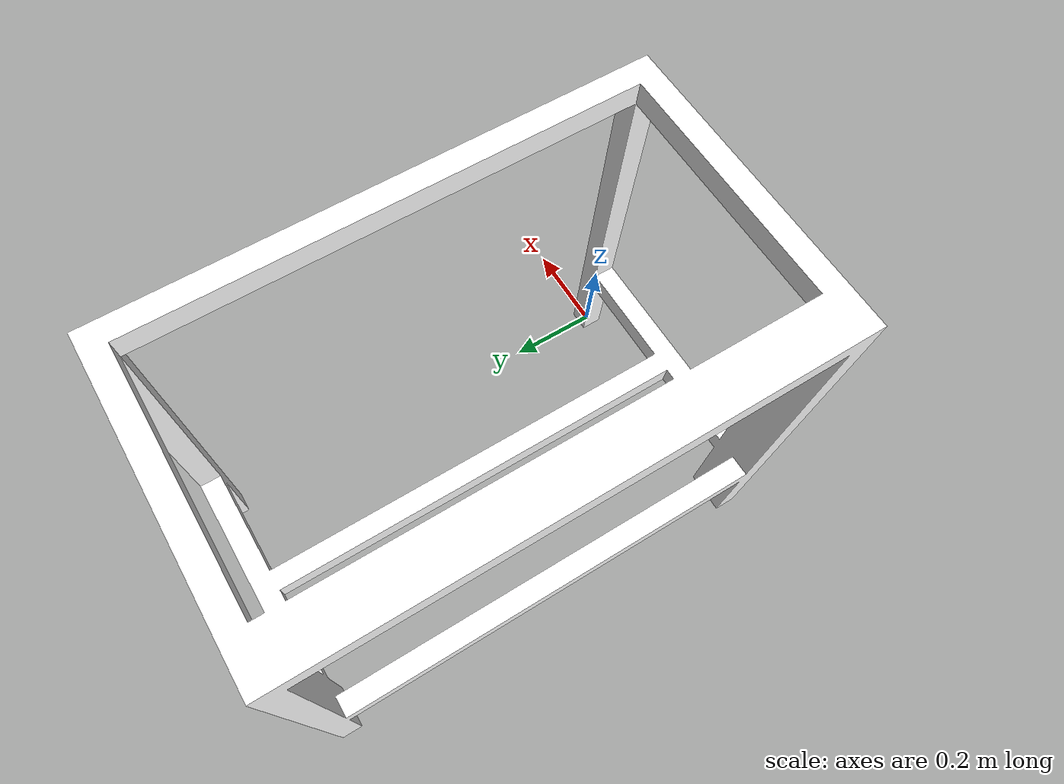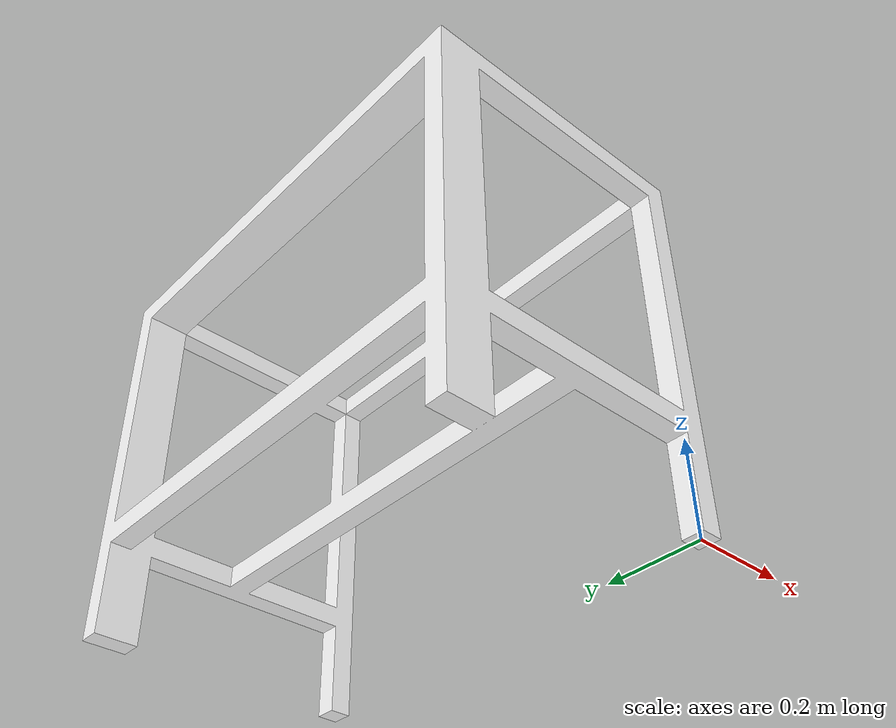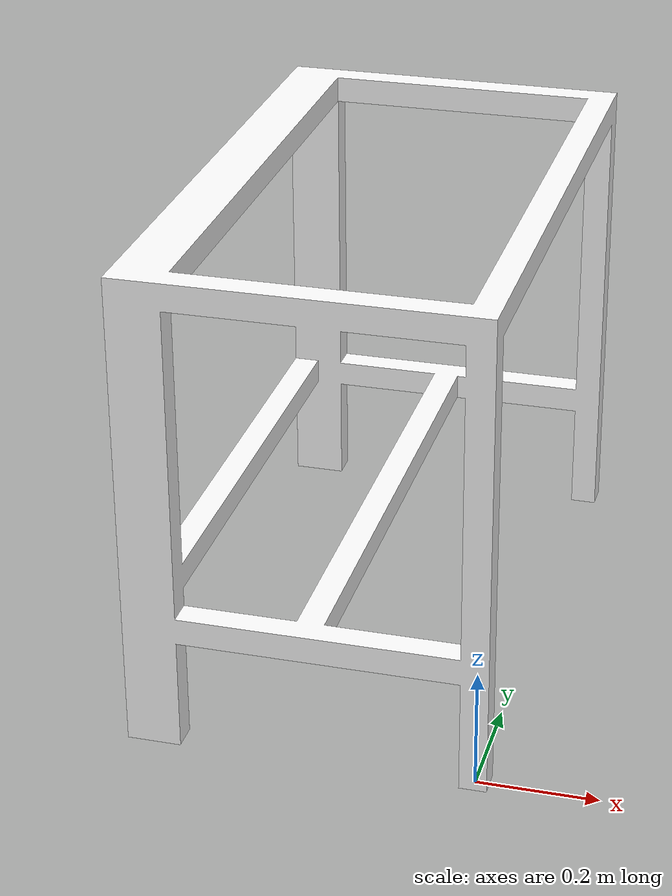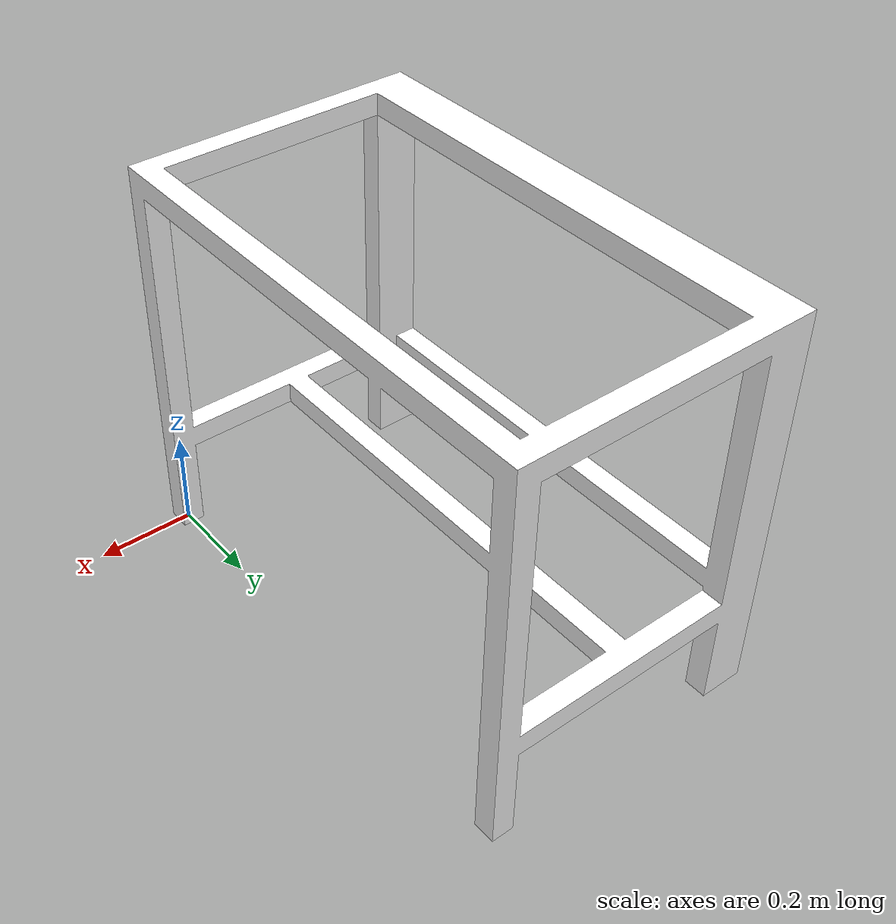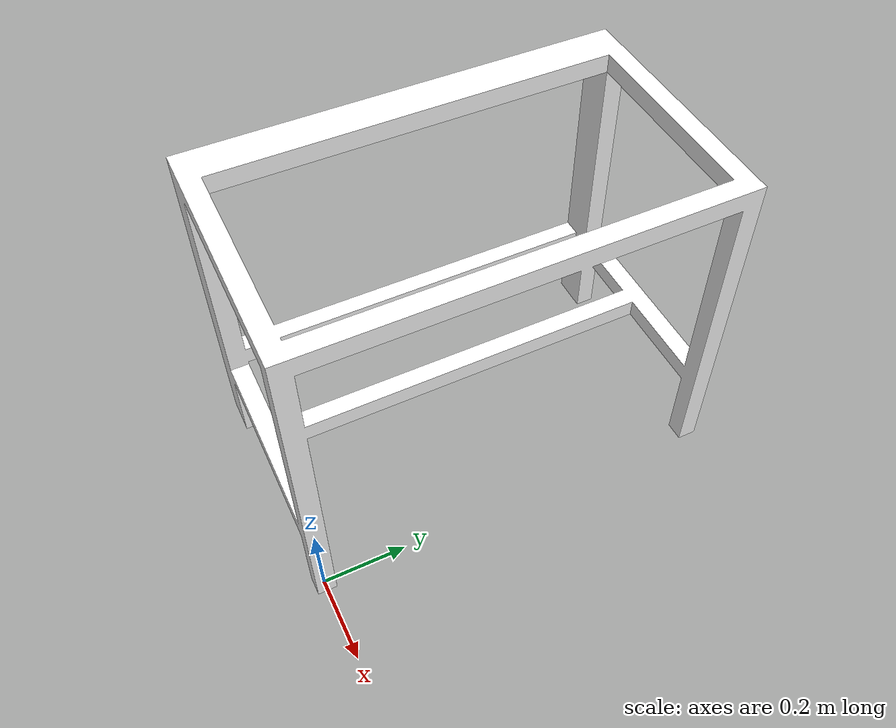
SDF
<?xml version="1.0" ?>
<sdf version="1.6">
  <model name="conveyor">
    <link name="link">
      <inertial>
        <mass>1</mass>
      </inertial>
      <collision name="collision">
        <geometry>
          <mesh>
            <uri>model://conveyor/meshes/conveyor_collision.stl</uri>
            <scale>1 1 1</scale>
          </mesh>
        </geometry>
      </collision>
      <visual name="visual">
	    <geometry>
          <mesh>
            <uri>model://conveyor/meshes/conveyor_visual.dae</uri>
          </mesh>
        </geometry>
        <meta>
            <layer> 1 </layer>
        </meta>
      </visual>
    </link>
  </model>
</sdf>
